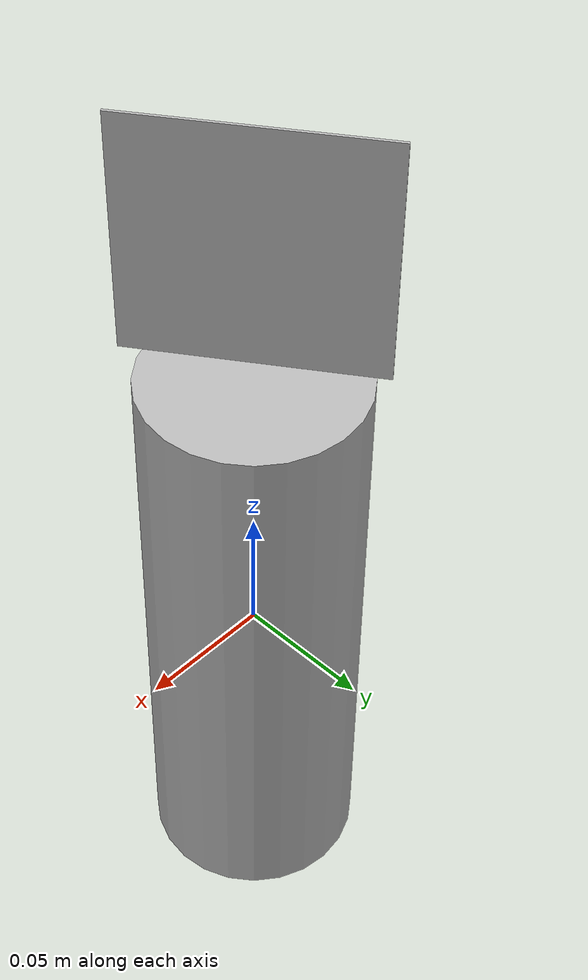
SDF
<?xml version="1.0" ?>
<sdf version="1.4">
  <model name="pringles_with_marker">
    <static>0</static>
    <link name="link">
      <inertial>
        <mass>0.25</mass>
        <inertia>
          <ixx>0.000000</ixx>
          <ixy>0.000000</ixy>
          <ixz>0.000000</ixz>
          <iyy>0.000000</iyy>
          <iyz>0.000000</iyz>
          <izz>0.000000</izz>
        </inertia>
      </inertial>
      <collision name="collision">
        <geometry>
          <cylinder>
            <radius>0.04</radius>
            <length>0.235</length>
          </cylinder>
        </geometry>
        <surface>
          <bounce />
          <friction>
            <ode />
          </friction>
          <contact>
            <ode />
          </contact>
        </surface>
      </collision>
      <visual name="visual">
        <geometry>
          <cylinder>
            <radius>0.04</radius>
            <length>0.235</length>
          </cylinder>
        </geometry>
        <material>
          <script>
            <uri>model://pringles/material/scripts</uri>
            <uri>model://pringles/material/textures</uri>
            <name>Custom/pringles</name>
          </script>
        </material>
      </visual>
      <velocity_decay>
        <linear>0.000000</linear>
        <angular>0.000000</angular>
      </velocity_decay>
      <self_collide>0</self_collide>
      <kinematic>0</kinematic>
      <gravity>1</gravity>
    </link>
    <!-- A marker on top of the can -->
    <include>
      <uri>model://marker26_8cm</uri>
      <pose>0 0 0.17 0.6 -1.57 0</pose>
    </include>
  </model>
</sdf>

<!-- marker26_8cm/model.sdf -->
<sdf version="1.6">
  <model name="marker26_8cm">
    <static>false</static>
    <link name="marker">
      <gravity>false</gravity>
      <visual name="visual">
        <geometry>
          <box>
            <size>0.09 0.09 0.001</size>
          </box>
        </geometry>
        <material>
          <script>
            <uri>model://marker26_8cm/material/scripts</uri>
            <uri>model://marker26_8cm/material/textures</uri>
            <name>Aruco/marker26_8cm</name>
          </script>
        </material>
      </visual>
    </link>
  </model>
</sdf>
